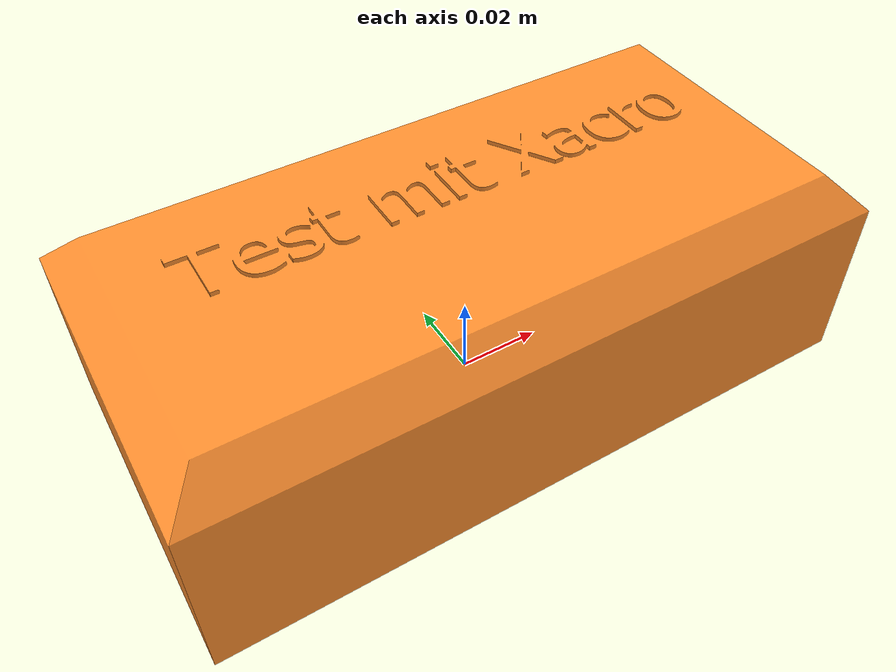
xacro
<!--Exported at 24.09.2026 11:51:34  -->
<!--by BIBA-->
<robot name="GoldbarrenGroup">
  <material name="Metall - 1600F (heiß)">
    <color rgba="1 0.561 0.184 1" />
  </material>
  <link name="GoldbarrenPart:1">
    <inertial>
      <origin xyz="0.0049 0.007 24.4985" rpy="-0.0006 0 -0" />
      <mass value="12.0785" />
      <inertia ixx="8712.7858" ixy="27864.3383" ixz="31707.2865" iyy="-0.6583" iyz="-2.3116" izz="-1.1268" />
    </inertial>
    <visual>
      <origin xyz="0 0 0" rpy="0 0 0" />
      <geometry>
        <mesh filename="package://my_robot_description/meshes/GoldbarrenPart.stl" />
      </geometry>
      <material name="Metall - 1600F (heiß)" />
    </visual>
  </link>
</robot>
